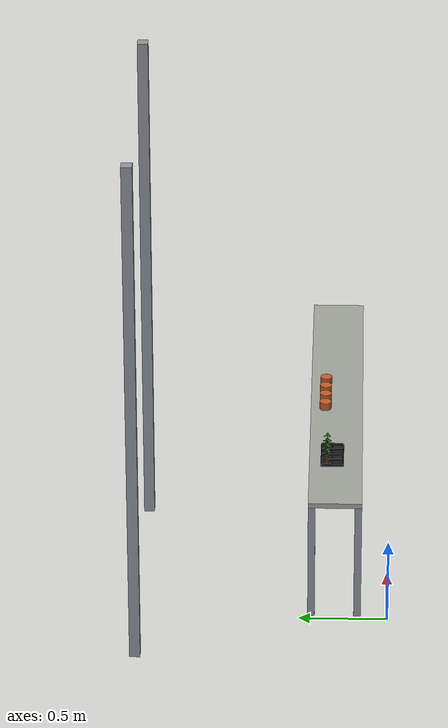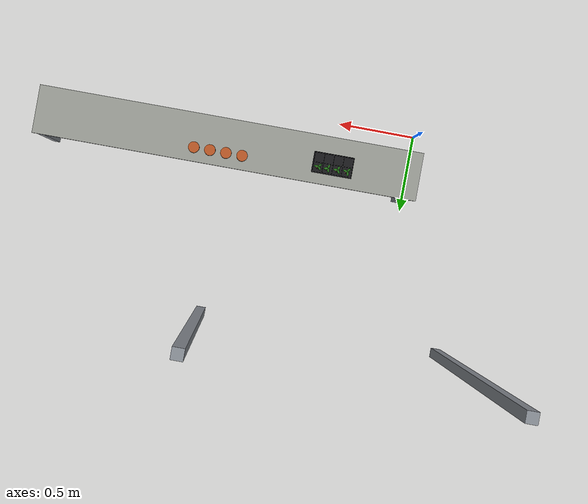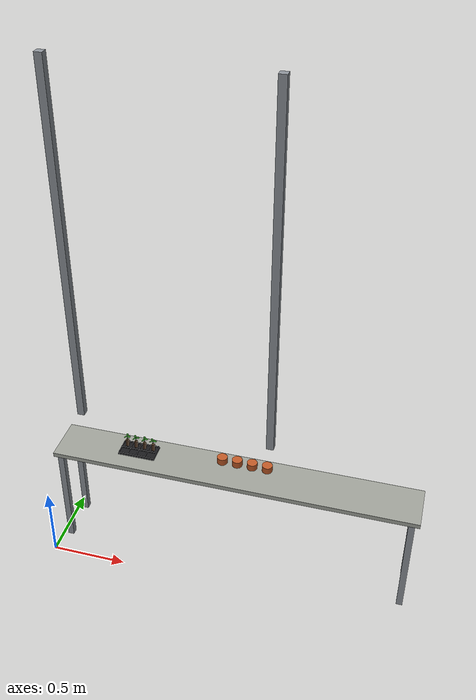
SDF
<sdf version="1.8">
 <world name="nursery_transplanting">
  <model name="post_0b">
   <static>true</static>
   <pose>-0.4000 1.4000 1.5000 0.0000 0.0000 0.0000</pose>
   <link name="link">
    <visual name="v">
     <geometry><box><size>0.0600 0.0600 3.0000</size></box></geometry>
     <material>
      <ambient>0.550 0.570 0.600 1</ambient>
      <diffuse>0.550 0.570 0.600 1</diffuse>
      <specular>0.1 0.1 0.1 1</specular>
     </material>
    </visual>
   </link>
  </model>
  <model name="post_1b">
   <static>true</static>
   <pose>1.2000 1.4000 1.5000 0.0000 0.0000 0.0000</pose>
   <link name="link">
    <visual name="v">
     <geometry><box><size>0.0600 0.0600 3.0000</size></box></geometry>
     <material>
      <ambient>0.550 0.570 0.600 1</ambient>
      <diffuse>0.550 0.570 0.600 1</diffuse>
      <specular>0.1 0.1 0.1 1</specular>
     </material>
    </visual>
   </link>
  </model>
  <model name="bench">
   <static>true</static>
   <pose>1.2000 0.3000 0.7330 0.0000 0.0000 0.0000</pose>
   <link name="link">
    <visual name="top">
     <geometry><box><size>2.4000 0.3000 0.0300</size></box></geometry>
     <material>
      <ambient>0.620 0.630 0.600 1</ambient>
      <diffuse>0.620 0.630 0.600 1</diffuse>
      <specular>0.1 0.1 0.1 1</specular>
     </material>
    </visual>
    <collision name="top_collision">
     <geometry><box><size>2.4000 0.3000 0.0300</size></box></geometry>
     <surface><friction><ode><mu>1.0</mu><mu2>1.0</mu2></ode></friction></surface>
    </collision>
    <visual name="leg_0">
     <pose>-1.1500 -0.1300 -0.3740 0.0000 0.0000 0.0000</pose>
     <geometry><box><size>0.0400 0.0400 0.7180</size></box></geometry>
     <material>
      <ambient>0.550 0.570 0.600 1</ambient>
      <diffuse>0.550 0.570 0.600 1</diffuse>
      <specular>0.1 0.1 0.1 1</specular>
     </material>
    </visual>
    <visual name="leg_1">
     <pose>1.1500 -0.1300 -0.3740 0.0000 0.0000 0.0000</pose>
     <geometry><box><size>0.0400 0.0400 0.7180</size></box></geometry>
     <material>
      <ambient>0.550 0.570 0.600 1</ambient>
      <diffuse>0.550 0.570 0.600 1</diffuse>
      <specular>0.1 0.1 0.1 1</specular>
     </material>
    </visual>
    <visual name="leg_2">
     <pose>-1.1500 0.1300 -0.3740 0.0000 0.0000 0.0000</pose>
     <geometry><box><size>0.0400 0.0400 0.7180</size></box></geometry>
     <material>
      <ambient>0.550 0.570 0.600 1</ambient>
      <diffuse>0.550 0.570 0.600 1</diffuse>
      <specular>0.1 0.1 0.1 1</specular>
     </material>
    </visual>
    <visual name="leg_3">
     <pose>1.1500 0.1300 -0.3740 0.0000 0.0000 0.0000</pose>
     <geometry><box><size>0.0400 0.0400 0.7180</size></box></geometry>
     <material>
      <ambient>0.550 0.570 0.600 1</ambient>
      <diffuse>0.550 0.570 0.600 1</diffuse>
      <specular>0.1 0.1 0.1 1</specular>
     </material>
    </visual>
   </link>
  </model>
  <model name="plug_tray">
   <static>true</static>
   <pose>0.5400 0.3200 0.7500 0.0000 0.0000 0.0000</pose>
   <link name="link">
    <visual name="base">
     <geometry><box><size>0.2500 0.1300 0.0040</size></box></geometry>
     <material>
      <ambient>0.100 0.100 0.110 1</ambient>
      <diffuse>0.100 0.100 0.110 1</diffuse>
      <specular>0.1 0.1 0.1 1</specular>
     </material>
    </visual>
    <collision name="base_collision">
     <geometry><box><size>0.2500 0.1300 0.0040</size></box></geometry>
     <surface><friction><ode><mu>1.0</mu><mu2>1.0</mu2></ode></friction></surface>
    </collision>
    <visual name="wx0">
     <pose>-0.1200 0.0000 0.0080 0.0000 0.0000 0.0000</pose>
     <geometry><box><size>0.0020 0.1200 0.0120</size></box></geometry>
     <material>
      <ambient>0.100 0.100 0.110 1</ambient>
      <diffuse>0.100 0.100 0.110 1</diffuse>
      <specular>0.1 0.1 0.1 1</specular>
     </material>
    </visual>
    <collision name="wx0_collision">
     <pose>-0.1200 0.0000 0.0080 0.0000 0.0000 0.0000</pose>
     <geometry><box><size>0.0020 0.1200 0.0120</size></box></geometry>
     <surface><friction><ode><mu>1.0</mu><mu2>1.0</mu2></ode></friction></surface>
    </collision>
    <visual name="wx1">
     <pose>-0.0600 0.0000 0.0080 0.0000 0.0000 0.0000</pose>
     <geometry><box><size>0.0020 0.1200 0.0120</size></box></geometry>
     <material>
      <ambient>0.100 0.100 0.110 1</ambient>
      <diffuse>0.100 0.100 0.110 1</diffuse>
      <specular>0.1 0.1 0.1 1</specular>
     </material>
    </visual>
    <collision name="wx1_collision">
     <pose>-0.0600 0.0000 0.0080 0.0000 0.0000 0.0000</pose>
     <geometry><box><size>0.0020 0.1200 0.0120</size></box></geometry>
     <surface><friction><ode><mu>1.0</mu><mu2>1.0</mu2></ode></friction></surface>
    </collision>
    <visual name="wx2">
     <pose>0.0000 0.0000 0.0080 0.0000 0.0000 0.0000</pose>
     <geometry><box><size>0.0020 0.1200 0.0120</size></box></geometry>
     <material>
      <ambient>0.100 0.100 0.110 1</ambient>
      <diffuse>0.100 0.100 0.110 1</diffuse>
      <specular>0.1 0.1 0.1 1</specular>
     </material>
    </visual>
    <collision name="wx2_collision">
     <pose>0.0000 0.0000 0.0080 0.0000 0.0000 0.0000</pose>
     <geometry><box><size>0.0020 0.1200 0.0120</size></box></geometry>
     <surface><friction><ode><mu>1.0</mu><mu2>1.0</mu2></ode></friction></surface>
    </collision>
    <visual name="wx3">
     <pose>0.0600 0.0000 0.0080 0.0000 0.0000 0.0000</pose>
     <geometry><box><size>0.0020 0.1200 0.0120</size></box></geometry>
     <material>
      <ambient>0.100 0.100 0.110 1</ambient>
      <diffuse>0.100 0.100 0.110 1</diffuse>
      <specular>0.1 0.1 0.1 1</specular>
     </material>
    </visual>
    <collision name="wx3_collision">
     <pose>0.0600 0.0000 0.0080 0.0000 0.0000 0.0000</pose>
     <geometry><box><size>0.0020 0.1200 0.0120</size></box></geometry>
     <surface><friction><ode><mu>1.0</mu><mu2>1.0</mu2></ode></friction></surface>
    </collision>
    <visual name="wx4">
     <pose>0.1200 0.0000 0.0080 0.0000 0.0000 0.0000</pose>
     <geometry><box><size>0.0020 0.1200 0.0120</size></box></geometry>
     <material>
      <ambient>0.100 0.100 0.110 1</ambient>
      <diffuse>0.100 0.100 0.110 1</diffuse>
      <specular>0.1 0.1 0.1 1</specular>
     </material>
    </visual>
    <collision name="wx4_collision">
     <pose>0.1200 0.0000 0.0080 0.0000 0.0000 0.0000</pose>
     <geometry><box><size>0.0020 0.1200 0.0120</size></box></geometry>
     <surface><friction><ode><mu>1.0</mu><mu2>1.0</mu2></ode></friction></surface>
    </collision>
    <visual name="wy0">
     <pose>0.0000 -0.0600 0.0080 0.0000 0.0000 0.0000</pose>
     <geometry><box><size>0.2400 0.0020 0.0120</size></box></geometry>
     <material>
      <ambient>0.100 0.100 0.110 1</ambient>
      <diffuse>0.100 0.100 0.110 1</diffuse>
      <specular>0.1 0.1 0.1 1</specular>
     </material>
    </visual>
    <collision name="wy0_collision">
     <pose>0.0000 -0.0600 0.0080 0.0000 0.0000 0.0000</pose>
     <geometry><box><size>0.2400 0.0020 0.0120</size></box></geometry>
     <surface><friction><ode><mu>1.0</mu><mu2>1.0</mu2></ode></friction></surface>
    </collision>
    <visual name="wy1">
     <pose>0.0000 0.0000 0.0080 0.0000 0.0000 0.0000</pose>
     <geometry><box><size>0.2400 0.0020 0.0120</size></box></geometry>
     <material>
      <ambient>0.100 0.100 0.110 1</ambient>
      <diffuse>0.100 0.100 0.110 1</diffuse>
      <specular>0.1 0.1 0.1 1</specular>
     </material>
    </visual>
    <collision name="wy1_collision">
     <pose>0.0000 0.0000 0.0080 0.0000 0.0000 0.0000</pose>
     <geometry><box><size>0.2400 0.0020 0.0120</size></box></geometry>
     <surface><friction><ode><mu>1.0</mu><mu2>1.0</mu2></ode></friction></surface>
    </collision>
    <visual name="wy2">
     <pose>0.0000 0.0600 0.0080 0.0000 0.0000 0.0000</pose>
     <geometry><box><size>0.2400 0.0020 0.0120</size></box></geometry>
     <material>
      <ambient>0.100 0.100 0.110 1</ambient>
      <diffuse>0.100 0.100 0.110 1</diffuse>
      <specular>0.1 0.1 0.1 1</specular>
     </material>
    </visual>
    <collision name="wy2_collision">
     <pose>0.0000 0.0600 0.0080 0.0000 0.0000 0.0000</pose>
     <geometry><box><size>0.2400 0.0020 0.0120</size></box></geometry>
     <surface><friction><ode><mu>1.0</mu><mu2>1.0</mu2></ode></friction></surface>
    </collision>
   </link>
  </model>
  <model name="seedling_1">
   <pose>0.4500 0.3500 0.7770 0.0000 0.0000 0.0000</pose>
   <link name="link">
    <inertial>
     <mass>0.016</mass>
     <inertia>
      <ixx>3.765e-06</ixx>
      <iyy>3.765e-06</iyy>
      <izz>8.640e-07</izz>
      <ixy>0</ixy>
      <ixz>0</ixz>
      <iyz>0</iyz>
     </inertia>
    </inertial>
    <visual name="plug">
     <geometry><box><size>0.0180 0.0180 0.0500</size></box></geometry>
     <material>
      <ambient>0.300 0.200 0.120 1</ambient>
      <diffuse>0.300 0.200 0.120 1</diffuse>
      <specular>0.1 0.1 0.1 1</specular>
     </material>
    </visual>
    <visual name="stem">
     <pose>0.0000 0.0000 0.0400 0.0000 0.0000 0.0000</pose>
     <geometry><cylinder><radius>0.0015</radius><length>0.0300</length></cylinder></geometry>
     <material>
      <ambient>0.100 0.500 0.120 1</ambient>
      <diffuse>0.100 0.500 0.120 1</diffuse>
      <specular>0.1 0.1 0.1 1</specular>
     </material>
    </visual>
    <collision name="core_collision">
     <geometry><box><size>0.0060 0.0060 0.0500</size></box></geometry>
     <surface><friction><ode><mu>1.5</mu><mu2>1.5</mu2></ode></friction></surface>
    </collision>
    <collision name="foot_collision">
     <pose>0.0000 0.0000 -0.0200 0.0000 0.0000 0.0000</pose>
     <geometry><box><size>0.0180 0.0180 0.0100</size></box></geometry>
     <surface><friction><ode><mu>1.5</mu><mu2>1.5</mu2></ode></friction></surface>
    </collision>
    <visual name="leaf0">
     <pose>0.0117 -0.0026 0.0550 0.2500 0.0000 -0.2144</pose>
     <geometry><ellipsoid><radii>0.0140 0.0070 0.0020</radii></ellipsoid></geometry>
     <material>
      <ambient>0.140 0.450 0.100 1</ambient>
      <diffuse>0.140 0.450 0.100 1</diffuse>
      <specular>0.1 0.1 0.1 1</specular>
     </material>
    </visual>
    <visual name="leaf1">
     <pose>-0.0028 0.0117 0.0550 0.2500 0.0000 1.8065</pose>
     <geometry><ellipsoid><radii>0.0140 0.0070 0.0020</radii></ellipsoid></geometry>
     <material>
      <ambient>0.140 0.450 0.100 1</ambient>
      <diffuse>0.140 0.450 0.100 1</diffuse>
      <specular>0.1 0.1 0.1 1</specular>
     </material>
    </visual>
    <visual name="leaf2">
     <pose>-0.0067 -0.0100 0.0550 0.2500 0.0000 4.1249</pose>
     <geometry><ellipsoid><radii>0.0140 0.0070 0.0020</radii></ellipsoid></geometry>
     <material>
      <ambient>0.140 0.450 0.100 1</ambient>
      <diffuse>0.140 0.450 0.100 1</diffuse>
      <specular>0.1 0.1 0.1 1</specular>
     </material>
    </visual>
   </link>
   <plugin filename="ignition-gazebo-detachable-joint-system" name="ignition::gazebo::systems::DetachableJoint">
    <parent_link>link</parent_link>
    <child_model>agrobot</child_model>
    <child_link>link_4</child_link>
    <attach_topic>/agrobot/sim/seedling_1/attach_gripper</attach_topic>
    <detach_topic>/agrobot/sim/seedling_1/detach_gripper</detach_topic>
    <suppress_child_warning>true</suppress_child_warning>
   </plugin>
  </model>
  <model name="seedling_3">
   <pose>0.5100 0.3500 0.7770 0.0000 0.0000 0.0000</pose>
   <link name="link">
    <inertial>
     <mass>0.016</mass>
     <inertia>
      <ixx>3.765e-06</ixx>
      <iyy>3.765e-06</iyy>
      <izz>8.640e-07</izz>
      <ixy>0</ixy>
      <ixz>0</ixz>
      <iyz>0</iyz>
     </inertia>
    </inertial>
    <visual name="plug">
     <geometry><box><size>0.0180 0.0180 0.0500</size></box></geometry>
     <material>
      <ambient>0.300 0.200 0.120 1</ambient>
      <diffuse>0.300 0.200 0.120 1</diffuse>
      <specular>0.1 0.1 0.1 1</specular>
     </material>
    </visual>
    <visual name="stem">
     <pose>0.0000 0.0000 0.0400 0.0000 0.0000 0.0000</pose>
     <geometry><cylinder><radius>0.0015</radius><length>0.0300</length></cylinder></geometry>
     <material>
      <ambient>0.100 0.500 0.120 1</ambient>
      <diffuse>0.100 0.500 0.120 1</diffuse>
      <specular>0.1 0.1 0.1 1</specular>
     </material>
    </visual>
    <collision name="core_collision">
     <geometry><box><size>0.0060 0.0060 0.0500</size></box></geometry>
     <surface><friction><ode><mu>1.5</mu><mu2>1.5</mu2></ode></friction></surface>
    </collision>
    <collision name="foot_collision">
     <pose>0.0000 0.0000 -0.0200 0.0000 0.0000 0.0000</pose>
     <geometry><box><size>0.0180 0.0180 0.0100</size></box></geometry>
     <surface><friction><ode><mu>1.5</mu><mu2>1.5</mu2></ode></friction></surface>
    </collision>
    <visual name="leaf0">
     <pose>0.0120 0.0007 0.0550 0.2500 0.0000 0.0609</pose>
     <geometry><ellipsoid><radii>0.0140 0.0070 0.0020</radii></ellipsoid></geometry>
     <material>
      <ambient>0.140 0.450 0.100 1</ambient>
      <diffuse>0.140 0.450 0.100 1</diffuse>
      <specular>0.1 0.1 0.1 1</specular>
     </material>
    </visual>
    <visual name="leaf1">
     <pose>-0.0064 0.0101 0.0550 0.2500 0.0000 2.1349</pose>
     <geometry><ellipsoid><radii>0.0140 0.0070 0.0020</radii></ellipsoid></geometry>
     <material>
      <ambient>0.140 0.450 0.100 1</ambient>
      <diffuse>0.140 0.450 0.100 1</diffuse>
      <specular>0.1 0.1 0.1 1</specular>
     </material>
    </visual>
    <visual name="leaf2">
     <pose>-0.0048 -0.0110 0.0550 0.2500 0.0000 4.2968</pose>
     <geometry><ellipsoid><radii>0.0140 0.0070 0.0020</radii></ellipsoid></geometry>
     <material>
      <ambient>0.140 0.450 0.100 1</ambient>
      <diffuse>0.140 0.450 0.100 1</diffuse>
      <specular>0.1 0.1 0.1 1</specular>
     </material>
    </visual>
   </link>
   <plugin filename="ignition-gazebo-detachable-joint-system" name="ignition::gazebo::systems::DetachableJoint">
    <parent_link>link</parent_link>
    <child_model>agrobot</child_model>
    <child_link>link_4</child_link>
    <attach_topic>/agrobot/sim/seedling_3/attach_gripper</attach_topic>
    <detach_topic>/agrobot/sim/seedling_3/detach_gripper</detach_topic>
    <suppress_child_warning>true</suppress_child_warning>
   </plugin>
  </model>
  <model name="seedling_5">
   <pose>0.5700 0.3500 0.7770 0.0000 0.0000 0.0000</pose>
   <link name="link">
    <inertial>
     <mass>0.016</mass>
     <inertia>
      <ixx>3.765e-06</ixx>
      <iyy>3.765e-06</iyy>
      <izz>8.640e-07</izz>
      <ixy>0</ixy>
      <ixz>0</ixz>
      <iyz>0</iyz>
     </inertia>
    </inertial>
    <visual name="plug">
     <geometry><box><size>0.0180 0.0180 0.0500</size></box></geometry>
     <material>
      <ambient>0.300 0.200 0.120 1</ambient>
      <diffuse>0.300 0.200 0.120 1</diffuse>
      <specular>0.1 0.1 0.1 1</specular>
     </material>
    </visual>
    <visual name="stem">
     <pose>0.0000 0.0000 0.0400 0.0000 0.0000 0.0000</pose>
     <geometry><cylinder><radius>0.0015</radius><length>0.0300</length></cylinder></geometry>
     <material>
      <ambient>0.100 0.500 0.120 1</ambient>
      <diffuse>0.100 0.500 0.120 1</diffuse>
      <specular>0.1 0.1 0.1 1</specular>
     </material>
    </visual>
    <collision name="core_collision">
     <geometry><box><size>0.0060 0.0060 0.0500</size></box></geometry>
     <surface><friction><ode><mu>1.5</mu><mu2>1.5</mu2></ode></friction></surface>
    </collision>
    <collision name="foot_collision">
     <pose>0.0000 0.0000 -0.0200 0.0000 0.0000 0.0000</pose>
     <geometry><box><size>0.0180 0.0180 0.0100</size></box></geometry>
     <surface><friction><ode><mu>1.5</mu><mu2>1.5</mu2></ode></friction></surface>
    </collision>
    <visual name="leaf0">
     <pose>0.0116 0.0029 0.0550 0.2500 0.0000 0.2436</pose>
     <geometry><ellipsoid><radii>0.0140 0.0070 0.0020</radii></ellipsoid></geometry>
     <material>
      <ambient>0.140 0.450 0.100 1</ambient>
      <diffuse>0.140 0.450 0.100 1</diffuse>
      <specular>0.1 0.1 0.1 1</specular>
     </material>
    </visual>
    <visual name="leaf1">
     <pose>-0.0031 0.0116 0.0550 0.2500 0.0000 1.8353</pose>
     <geometry><ellipsoid><radii>0.0140 0.0070 0.0020</radii></ellipsoid></geometry>
     <material>
      <ambient>0.140 0.450 0.100 1</ambient>
      <diffuse>0.140 0.450 0.100 1</diffuse>
      <specular>0.1 0.1 0.1 1</specular>
     </material>
    </visual>
    <visual name="leaf2">
     <pose>-0.0038 -0.0114 0.0550 0.2500 0.0000 4.3913</pose>
     <geometry><ellipsoid><radii>0.0140 0.0070 0.0020</radii></ellipsoid></geometry>
     <material>
      <ambient>0.140 0.450 0.100 1</ambient>
      <diffuse>0.140 0.450 0.100 1</diffuse>
      <specular>0.1 0.1 0.1 1</specular>
     </material>
    </visual>
   </link>
   <plugin filename="ignition-gazebo-detachable-joint-system" name="ignition::gazebo::systems::DetachableJoint">
    <parent_link>link</parent_link>
    <child_model>agrobot</child_model>
    <child_link>link_4</child_link>
    <attach_topic>/agrobot/sim/seedling_5/attach_gripper</attach_topic>
    <detach_topic>/agrobot/sim/seedling_5/detach_gripper</detach_topic>
    <suppress_child_warning>true</suppress_child_warning>
   </plugin>
  </model>
  <model name="seedling_7">
   <pose>0.6300 0.3500 0.7770 0.0000 0.0000 0.0000</pose>
   <link name="link">
    <inertial>
     <mass>0.016</mass>
     <inertia>
      <ixx>3.765e-06</ixx>
      <iyy>3.765e-06</iyy>
      <izz>8.640e-07</izz>
      <ixy>0</ixy>
      <ixz>0</ixz>
      <iyz>0</iyz>
     </inertia>
    </inertial>
    <visual name="plug">
     <geometry><box><size>0.0180 0.0180 0.0500</size></box></geometry>
     <material>
      <ambient>0.300 0.200 0.120 1</ambient>
      <diffuse>0.300 0.200 0.120 1</diffuse>
      <specular>0.1 0.1 0.1 1</specular>
     </material>
    </visual>
    <visual name="stem">
     <pose>0.0000 0.0000 0.0400 0.0000 0.0000 0.0000</pose>
     <geometry><cylinder><radius>0.0015</radius><length>0.0300</length></cylinder></geometry>
     <material>
      <ambient>0.100 0.500 0.120 1</ambient>
      <diffuse>0.100 0.500 0.120 1</diffuse>
      <specular>0.1 0.1 0.1 1</specular>
     </material>
    </visual>
    <collision name="core_collision">
     <geometry><box><size>0.0060 0.0060 0.0500</size></box></geometry>
     <surface><friction><ode><mu>1.5</mu><mu2>1.5</mu2></ode></friction></surface>
    </collision>
    <collision name="foot_collision">
     <pose>0.0000 0.0000 -0.0200 0.0000 0.0000 0.0000</pose>
     <geometry><box><size>0.0180 0.0180 0.0100</size></box></geometry>
     <surface><friction><ode><mu>1.5</mu><mu2>1.5</mu2></ode></friction></surface>
    </collision>
    <visual name="leaf0">
     <pose>0.0120 -0.0007 0.0550 0.2500 0.0000 -0.0572</pose>
     <geometry><ellipsoid><radii>0.0140 0.0070 0.0020</radii></ellipsoid></geometry>
     <material>
      <ambient>0.140 0.450 0.100 1</ambient>
      <diffuse>0.140 0.450 0.100 1</diffuse>
      <specular>0.1 0.1 0.1 1</specular>
     </material>
    </visual>
    <visual name="leaf1">
     <pose>-0.0080 0.0089 0.0550 0.2500 0.0000 2.3054</pose>
     <geometry><ellipsoid><radii>0.0140 0.0070 0.0020</radii></ellipsoid></geometry>
     <material>
      <ambient>0.140 0.450 0.100 1</ambient>
      <diffuse>0.140 0.450 0.100 1</diffuse>
      <specular>0.1 0.1 0.1 1</specular>
     </material>
    </visual>
    <visual name="leaf2">
     <pose>-0.0086 -0.0083 0.0550 0.2500 0.0000 3.9112</pose>
     <geometry><ellipsoid><radii>0.0140 0.0070 0.0020</radii></ellipsoid></geometry>
     <material>
      <ambient>0.140 0.450 0.100 1</ambient>
      <diffuse>0.140 0.450 0.100 1</diffuse>
      <specular>0.1 0.1 0.1 1</specular>
     </material>
    </visual>
   </link>
   <plugin filename="ignition-gazebo-detachable-joint-system" name="ignition::gazebo::systems::DetachableJoint">
    <parent_link>link</parent_link>
    <child_model>agrobot</child_model>
    <child_link>link_4</child_link>
    <attach_topic>/agrobot/sim/seedling_7/attach_gripper</attach_topic>
    <detach_topic>/agrobot/sim/seedling_7/detach_gripper</detach_topic>
    <suppress_child_warning>true</suppress_child_warning>
   </plugin>
  </model>
  <model name="pot_1">
   <static>true</static>
   <pose>1.1000 0.3650 0.7480 0.0000 0.0000 0.0000</pose>
   <link name="link">
    <visual name="shell">
     <pose>0.0000 0.0000 0.0225 0.0000 0.0000 0.0000</pose>
     <geometry><cylinder><radius>0.0340</radius><length>0.0450</length></cylinder></geometry>
     <material>
      <ambient>0.750 0.350 0.150 1</ambient>
      <diffuse>0.750 0.350 0.150 1</diffuse>
      <specular>0.1 0.1 0.1 1</specular>
     </material>
    </visual>
    <visual name="soil">
     <pose>0.0000 0.0000 0.0350 0.0000 0.0000 0.0000</pose>
     <geometry><cylinder><radius>0.0310</radius><length>0.0020</length></cylinder></geometry>
     <material>
      <ambient>0.300 0.200 0.120 1</ambient>
      <diffuse>0.300 0.200 0.120 1</diffuse>
      <specular>0.1 0.1 0.1 1</specular>
     </material>
    </visual>
    <collision name="soil_collision">
     <pose>0.0000 0.0000 0.0180 0.0000 0.0000 0.0000</pose>
     <geometry><cylinder><radius>0.0310</radius><length>0.0360</length></cylinder></geometry>
     <surface><friction><ode><mu>1.0</mu><mu2>1.0</mu2></ode></friction></surface>
    </collision>
   </link>
  </model>
  <model name="pot_3">
   <static>true</static>
   <pose>1.2000 0.3650 0.7480 0.0000 0.0000 0.0000</pose>
   <link name="link">
    <visual name="shell">
     <pose>0.0000 0.0000 0.0225 0.0000 0.0000 0.0000</pose>
     <geometry><cylinder><radius>0.0340</radius><length>0.0450</length></cylinder></geometry>
     <material>
      <ambient>0.750 0.350 0.150 1</ambient>
      <diffuse>0.750 0.350 0.150 1</diffuse>
      <specular>0.1 0.1 0.1 1</specular>
     </material>
    </visual>
    <visual name="soil">
     <pose>0.0000 0.0000 0.0350 0.0000 0.0000 0.0000</pose>
     <geometry><cylinder><radius>0.0310</radius><length>0.0020</length></cylinder></geometry>
     <material>
      <ambient>0.300 0.200 0.120 1</ambient>
      <diffuse>0.300 0.200 0.120 1</diffuse>
      <specular>0.1 0.1 0.1 1</specular>
     </material>
    </visual>
    <collision name="soil_collision">
     <pose>0.0000 0.0000 0.0180 0.0000 0.0000 0.0000</pose>
     <geometry><cylinder><radius>0.0310</radius><length>0.0360</length></cylinder></geometry>
     <surface><friction><ode><mu>1.0</mu><mu2>1.0</mu2></ode></friction></surface>
    </collision>
   </link>
  </model>
  <model name="pot_5">
   <static>true</static>
   <pose>1.3000 0.3650 0.7480 0.0000 0.0000 0.0000</pose>
   <link name="link">
    <visual name="shell">
     <pose>0.0000 0.0000 0.0225 0.0000 0.0000 0.0000</pose>
     <geometry><cylinder><radius>0.0340</radius><length>0.0450</length></cylinder></geometry>
     <material>
      <ambient>0.750 0.350 0.150 1</ambient>
      <diffuse>0.750 0.350 0.150 1</diffuse>
      <specular>0.1 0.1 0.1 1</specular>
     </material>
    </visual>
    <visual name="soil">
     <pose>0.0000 0.0000 0.0350 0.0000 0.0000 0.0000</pose>
     <geometry><cylinder><radius>0.0310</radius><length>0.0020</length></cylinder></geometry>
     <material>
      <ambient>0.300 0.200 0.120 1</ambient>
      <diffuse>0.300 0.200 0.120 1</diffuse>
      <specular>0.1 0.1 0.1 1</specular>
     </material>
    </visual>
    <collision name="soil_collision">
     <pose>0.0000 0.0000 0.0180 0.0000 0.0000 0.0000</pose>
     <geometry><cylinder><radius>0.0310</radius><length>0.0360</length></cylinder></geometry>
     <surface><friction><ode><mu>1.0</mu><mu2>1.0</mu2></ode></friction></surface>
    </collision>
   </link>
  </model>
  <model name="pot_7">
   <static>true</static>
   <pose>1.4000 0.3650 0.7480 0.0000 0.0000 0.0000</pose>
   <link name="link">
    <visual name="shell">
     <pose>0.0000 0.0000 0.0225 0.0000 0.0000 0.0000</pose>
     <geometry><cylinder><radius>0.0340</radius><length>0.0450</length></cylinder></geometry>
     <material>
      <ambient>0.750 0.350 0.150 1</ambient>
      <diffuse>0.750 0.350 0.150 1</diffuse>
      <specular>0.1 0.1 0.1 1</specular>
     </material>
    </visual>
    <visual name="soil">
     <pose>0.0000 0.0000 0.0350 0.0000 0.0000 0.0000</pose>
     <geometry><cylinder><radius>0.0310</radius><length>0.0020</length></cylinder></geometry>
     <material>
      <ambient>0.300 0.200 0.120 1</ambient>
      <diffuse>0.300 0.200 0.120 1</diffuse>
      <specular>0.1 0.1 0.1 1</specular>
     </material>
    </visual>
    <collision name="soil_collision">
     <pose>0.0000 0.0000 0.0180 0.0000 0.0000 0.0000</pose>
     <geometry><cylinder><radius>0.0310</radius><length>0.0360</length></cylinder></geometry>
     <surface><friction><ode><mu>1.0</mu><mu2>1.0</mu2></ode></friction></surface>
    </collision>
   </link>
  </model>
 </world>
</sdf>
